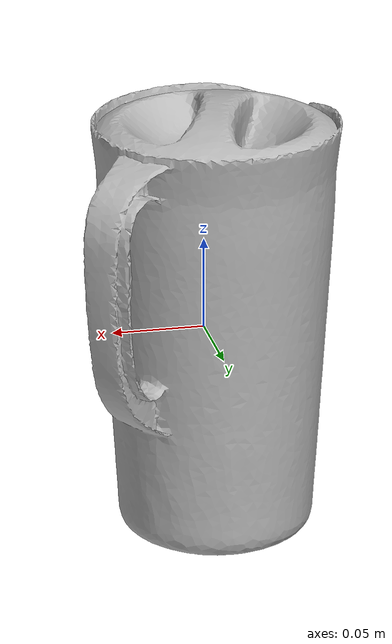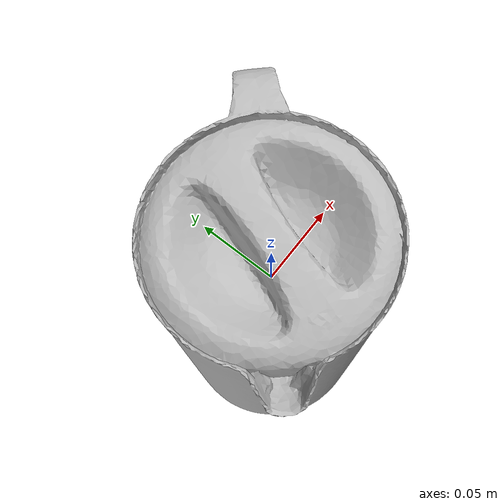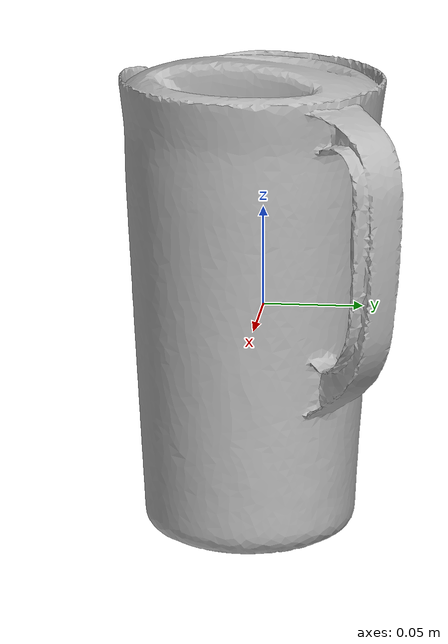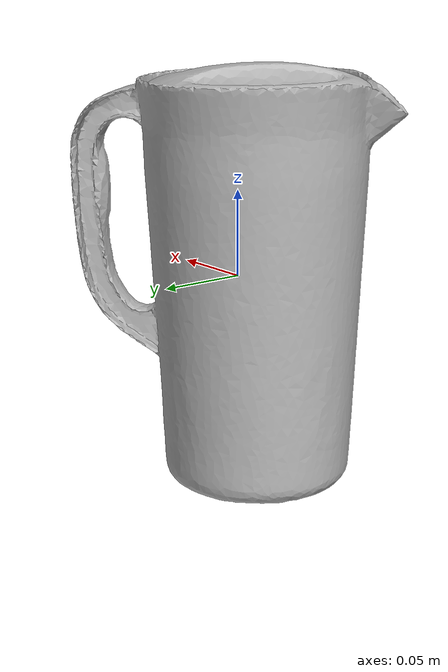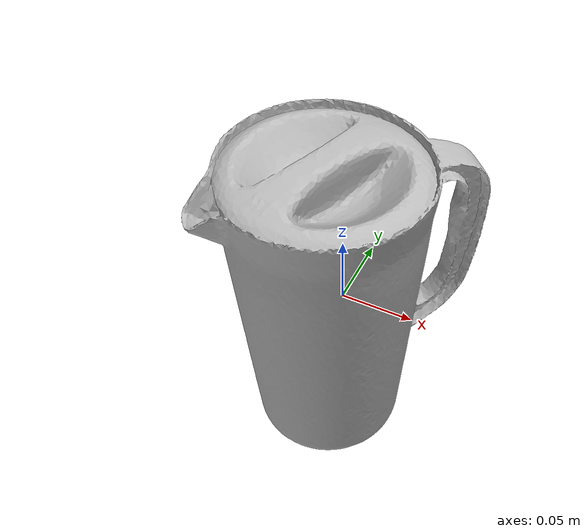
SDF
<?xml version="1.0" ?>
<sdf version="1.7">
<!--
This SDF file was automatically generated using a template modified
and authored by Jinjian Li. The moment of interia is not supposed to be changed.
-->
    <model name="obj_000011">
      <pose>0.0 0.0 0.0 0.0 0.0 0.0</pose>
      <link name="link">
        <inertial>
          <inertia>
           <ixx>0.019987936218264304</ixx>
           <ixy>-0.00011787342181032772</ixy>
           <ixz>-9.00165379417679e-05</ixz>
           <iyy>0.020009450374388487</iyy>
           <iyz>-0.00016126261794277666</iyz>
           <izz>0.007044095619655705</izz>
          </inertia>
          <mass>3.820842281211885</mass>
        </inertial>
        <collision name="collision">
          <geometry>
            <mesh>
             <uri>obj_000011.obj</uri>
             <scale>1 1 1</scale>
            </mesh>
          </geometry>
        </collision>

        <visual name="visual">
          <geometry>
            <mesh>
             <uri>obj_000011.obj</uri>
             <scale>1 1 1</scale>
            </mesh>
          </geometry>
        </visual>
      </link>
    </model>
</sdf>
